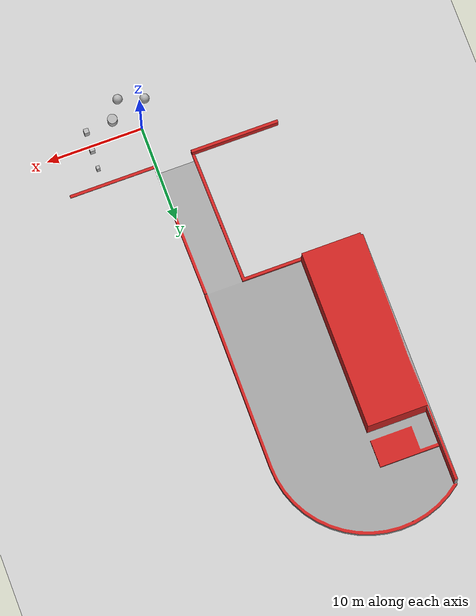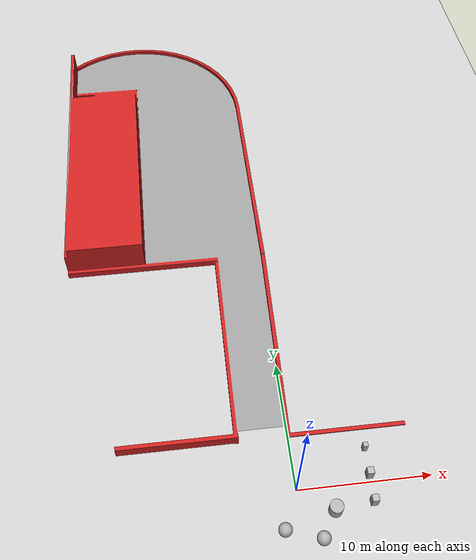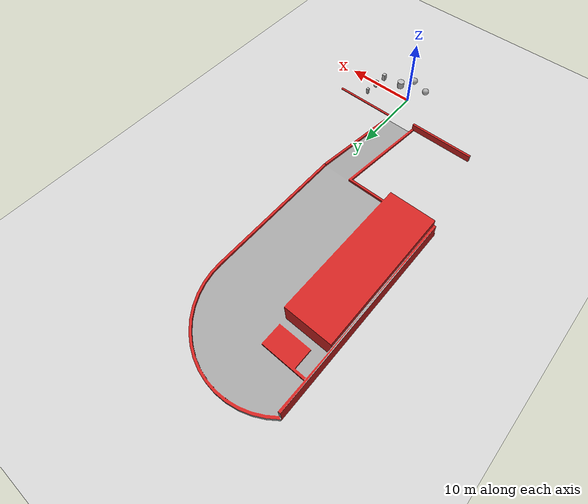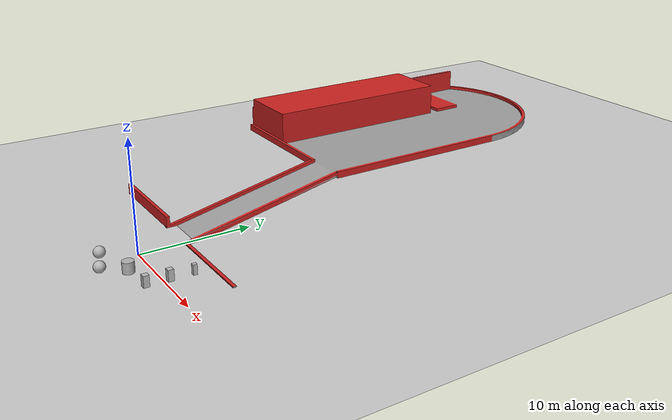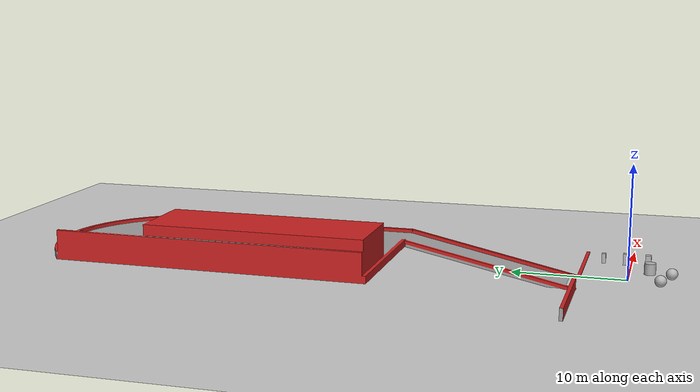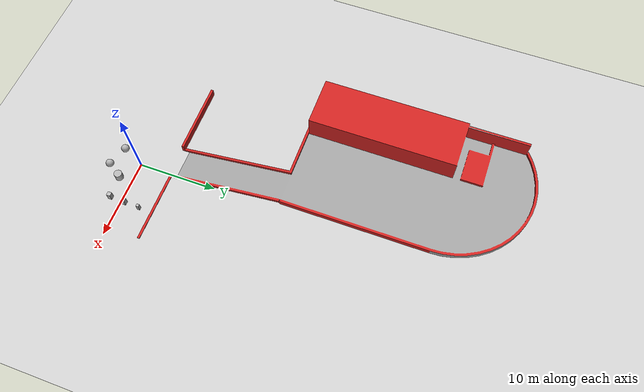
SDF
<sdf version="1.10">
 <world name="driveway">
  <physics name="1ms" type="ignored">
   <max_step_size>0.01</max_step_size>
   <real_time_factor>1</real_time_factor>
   <real_time_update_rate>1000</real_time_update_rate>
  </physics>
  <plugin name="gz::sim::systems::Physics" filename="gz-sim-physics-system"/>
  <plugin name="gz::sim::systems::UserCommands" filename="gz-sim-user-commands-system"/>
  <plugin name="gz::sim::systems::SceneBroadcaster" filename="gz-sim-scene-broadcaster-system"/>
  <plugin name="gz::sim::systems::Imu" filename="gz-sim-imu-system"/>
  <plugin name="gz::sim::systems::Sensors" filename="gz-sim-sensors-system">
   <render_engine>ogre2</render_engine>
  </plugin>
  <gravity>0 0 -9.8000000000000007</gravity>
  <magnetic_field>5.5644999999999998e-06 2.2875799999999999e-05 -4.2388400000000002e-05</magnetic_field>
  <atmosphere type="adiabatic"/>
  <scene>
   <ambient>0.400000006 0.400000006 0.400000006 1</ambient>
   <background>0.699999988 0.699999988 0.699999988 1</background>
   <shadows>true</shadows>
  </scene>
  <model name="ground_plane">
   <static>true</static>
   <link name="link">
    <collision name="collision">
     <geometry><plane><normal>0 0 1</normal><size>100 100</size></plane></geometry>
     <surface><friction><ode><mu>0.80000000000000004</mu><mu2>0.80000000000000004</mu2></ode></friction></surface>
    </collision>
    <visual name="visual">
     <geometry><plane><normal>0 0 1</normal><size>100 100</size></plane></geometry>
     <material>
      <ambient>0.800000012 0.800000012 0.800000012 1</ambient>
      <diffuse>0.800000012 0.800000012 0.800000012 1</diffuse>
      <specular>0.800000012 0.800000012 0.800000012 1</specular>
     </material>
    </visual>
    <inertial>
     <mass>1</mass>
     <inertia><ixx>1</ixx><ixy>0</ixy><ixz>0</ixz><iyy>1</iyy><iyz>0</iyz><izz>1</izz></inertia>
    </inertial>
   </link>
  </model>
  <model name="cylinder">
   <pose>2.4996803647074355 -1.7120214653368446 0.53332607497845363 0.0027131386142535451 0.00015417512395317901 6.3007325045630201e-06</pose>
   <link name="cylinder_link">
    <inertial>
     <inertia>
      <ixx>0.14580000000000001</ixx>
      <ixy>0</ixy>
      <ixz>0</ixz>
      <iyy>0.14580000000000001</iyy>
      <iyz>0</iyz>
      <izz>0.125</izz>
     </inertia>
     <mass>1</mass>
    </inertial>
    <collision name="cylinder_collision">
     <geometry><cylinder><radius>0.5</radius><length>1</length></cylinder></geometry>
    </collision>
    <visual name="cylinder_visual">
     <geometry><cylinder><radius>0.5</radius><length>1</length></cylinder></geometry>
     <material>
      <ambient>0.300000012 0.300000012 0.300000012 1</ambient>
      <diffuse>0.699999988 0.699999988 0.699999988 1</diffuse>
      <specular>1 1 1 1</specular>
     </material>
    </visual>
   </link>
   <static>false</static>
  </model>
  <model name="sphere">
   <pose>-1.2581936727758221 -2.7498126592616607 0.499999990200098 0 0 0</pose>
   <link name="sphere_link">
    <inertial>
     <inertia>
      <ixx>0.10000000000000001</ixx>
      <ixy>0</ixy>
      <ixz>0</ixz>
      <iyy>0.10000000000000001</iyy>
      <iyz>0</iyz>
      <izz>0.10000000000000001</izz>
     </inertia>
     <mass>1</mass>
    </inertial>
    <collision name="sphere_collision"><geometry><sphere><radius>0.5</radius></sphere></geometry></collision>
    <visual name="sphere_visual">
     <geometry><sphere><radius>0.5</radius></sphere></geometry>
     <material>
      <ambient>0.300000012 0.300000012 0.300000012 1</ambient>
      <diffuse>0.699999988 0.699999988 0.699999988 1</diffuse>
      <specular>1 1 1 1</specular>
     </material>
    </visual>
   </link>
   <static>false</static>
  </model>
  <model name="sphere_0">
   <pose>1.288429648377158 -3.5908630058379987 0.499999990200098 0 0 0</pose>
   <link name="sphere_link">
    <inertial>
     <inertia>
      <ixx>0.10000000000000001</ixx>
      <ixy>0</ixy>
      <ixz>0</ixz>
      <iyy>0.10000000000000001</iyy>
      <iyz>0</iyz>
      <izz>0.10000000000000001</izz>
     </inertia>
     <mass>1</mass>
    </inertial>
    <collision name="sphere_collision"><geometry><sphere><radius>0.5</radius></sphere></geometry></collision>
    <visual name="sphere_visual">
     <geometry><sphere><radius>0.5</radius></sphere></geometry>
     <material>
      <ambient>0.300000012 0.300000012 0.300000012 1</ambient>
      <diffuse>0.699999988 0.699999988 0.699999988 1</diffuse>
      <specular>1 1 1 1</specular>
     </material>
    </visual>
   </link>
   <static>false</static>
  </model>
  <model name="Driveway">
   <link name="link">
    <visual name="visual">
     <geometry><mesh><uri>file:///home/indie/garbo_ws/src/garbo/world/meshes/Driveway.dae</uri></mesh></geometry>
    </visual>
    <collision name="collision">
     <geometry><mesh><uri>file:///home/indie/garbo_ws/src/garbo/world/meshes/Driveway.dae</uri></mesh></geometry>
     <surface><friction><ode><mu>0.80000000000000004</mu><mu2>0.80000000000000004</mu2></ode></friction></surface>
    </collision>
    <inertial>
     <mass>1</mass>
     <inertia><ixx>1</ixx><ixy>0</ixy><ixz>0</ixz><iyy>1</iyy><iyz>0</iyz><izz>1</izz></inertia>
    </inertial>
   </link>
   <pose>-3.7301655356565218 -2.0966974982482873 -0.27156512599562099 0.0027146031228186766 0.0001486533794703613 6.7007967251794898e-06</pose>
   <static>true</static>
  </model>
  <model name="trash_bin">
   <pose>5.5196502793423949 2.4806453110246496 0.45 0 0 0</pose>
   <link name="box_link">
    <inertial>
     <inertia><ixx>0.16666</ixx><ixy>0</ixy><ixz>0</ixz><iyy>0.16666</iyy><iyz>0</iyz><izz>0.16666</izz></inertia>
     <mass>5</mass>
    </inertial>
    <collision name="box_collision"><geometry><box><size>0.35 0.35 0.9</size></box></geometry></collision>
    <visual name="box_visual">
     <geometry><box><size>0.35 0.35 0.9</size></box></geometry>
     <material><color rgba="0.0 0.0 0.0 1.0"/></material>
    </visual>
   </link>
   <static>false</static>
  </model>
  <model name="recycle_bin">
   <pose>5.4409400294970771 0.50960481367723409 0.5 0 0 0</pose>
   <link name="box_link">
    <inertial>
     <inertia><ixx>0.16666</ixx><ixy>0</ixy><ixz>0</ixz><iyy>0.16666</iyy><iyz>0</iyz><izz>0.16666</izz></inertia>
     <mass>5</mass>
    </inertial>
    <collision name="box_collision"><geometry><box><size>0.5 0.5 1</size></box></geometry></collision>
    <visual name="box_visual">
     <geometry><box><size>0.5 0.5 1</size></box></geometry>
     <material><color rgba="0.0 0.0 1.0 1.0"/></material>
    </visual>
   </link>
   <static>false</static>
  </model>
  <model name="green_bin">
   <pose>5.3450411942024942 -1.4334154578621039 0.5 0 0 0</pose>
   <link name="box_link">
    <inertial>
     <inertia><ixx>0.16666</ixx><ixy>0</ixy><ixz>0</ixz><iyy>0.16666</iyy><iyz>0</iyz><izz>0.16666</izz></inertia>
     <mass>5</mass>
    </inertial>
    <collision name="box_collision"><geometry><box><size>0.5 0.5 1</size></box></geometry></collision>
    <visual name="box_visual">
     <geometry><box><size>0.5 0.5 1</size></box></geometry>
     <material><color rgba="0.0 1.0 0.0 1.0"/></material>
    </visual>
   </link>
   <static>false</static>
  </model>
  <light name="sun" type="directional">
   <pose>0 0 10 0 0 0</pose>
   <intensity>1</intensity>
   <direction>-0.5 0.10000000000000001 -0.90000000000000002</direction>
   <diffuse>0.800000012 0.800000012 0.800000012 1</diffuse>
   <specular>0.200000003 0.200000003 0.200000003 1</specular>
   <attenuation>
    <range>1000</range>
    <linear>0.01</linear>
    <constant>0.90000000000000002</constant>
    <quadratic>0.001</quadratic>
   </attenuation>
   <spot><inner_angle>0</inner_angle><outer_angle>0</outer_angle><falloff>0</falloff></spot>
  </light>
 </world>
</sdf>
